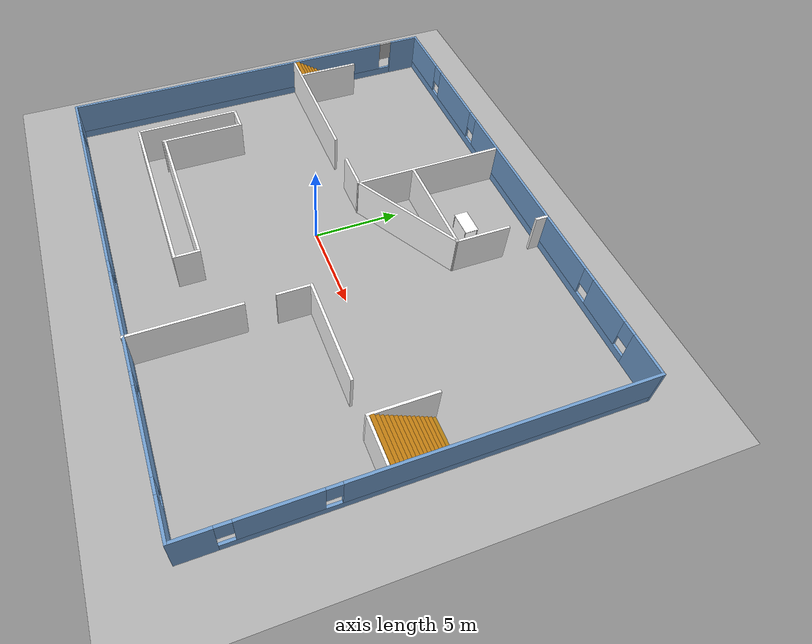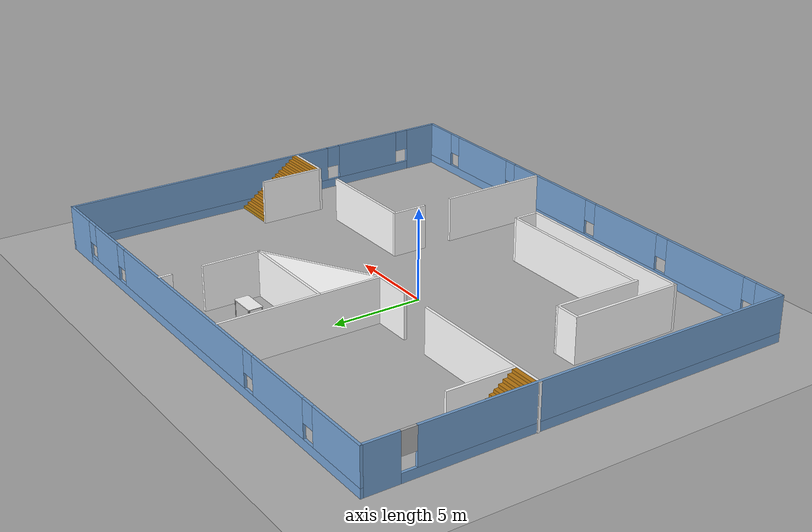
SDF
<sdf version="1.7">
 <world name="default">
  <model name="ground_plane">
   <static>1</static>
   <link name="link">
    <collision name="collision">
     <geometry><plane><normal>0 0 1</normal><size>100 100</size></plane></geometry>
     <surface>
      <contact><collide_bitmask>65535</collide_bitmask></contact>
      <friction><ode><mu>100</mu><mu2>50</mu2></ode></friction>
     </surface>
    </collision>
    <visual name="visual">
     <cast_shadows>0</cast_shadows>
     <geometry><plane><normal>0 0 1</normal><size>100 100</size></plane></geometry>
     <material>
      <ambient>0.7 0.7 0.7 1.0</ambient>
      <diffuse>0.7 0.7 0.7 1.0</diffuse>
      <specular>0.01 0.01 0.01 1.0</specular>
     </material>
    </visual>
   </link>
  </model>
  <model name="officeSpace1">
   <pose>1.12783 0.083294 0 0 -0 0</pose>
   <link name="Stairs_0">
    <visual name="Stairs_0_Visual_0">
     <pose>13.1278 1.44361 0.083333 0 -0 0</pose>
     <geometry><box><size>2.48543 0.236417 0.166667</size></box></geometry>
     <material>
      <ambient>0.7 0.490196 0.0666667 1</ambient>
      <diffuse>0.7 0.490196 0.0666667 1</diffuse>
      <specular>0.01 0.01 0.01 1.0</specular>
     </material>
     <meta><layer>0</layer></meta>
    </visual>
    <collision name="Stairs_0_Collision_0">
     <geometry><box><size>2.48543 0.236417 0.166667</size></box></geometry>
     <pose>13.1278 1.44361 0.083333 0 -0 0</pose>
    </collision>
    <visual name="Stairs_0_Visual_1">
     <pose>13.1278 1.20719 0.25 0 -0 0</pose>
     <geometry><box><size>2.48543 0.236417 0.166667</size></box></geometry>
     <material>
      <ambient>0.756863 0.490196 0.0666667 1</ambient>
      <diffuse>0.756863 0.490196 0.0666667 1</diffuse>
      <specular>0.01 0.01 0.01 1.0</specular>
     </material>
     <meta><layer>0</layer></meta>
    </visual>
    <collision name="Stairs_0_Collision_1">
     <geometry><box><size>2.48543 0.236417 0.166667</size></box></geometry>
     <pose>13.1278 1.20719 0.25 0 -0 0</pose>
    </collision>
    <visual name="Stairs_0_Visual_2">
     <pose>13.1278 0.97077 0.416667 0 -0 0</pose>
     <geometry><box><size>2.48543 0.236417 0.166667</size></box></geometry>
     <material>
      <ambient>0.756863 0.490196 0.0666667 1</ambient>
      <diffuse>0.756863 0.490196 0.0666667 1</diffuse>
      <specular>0.01 0.01 0.01 1.0</specular>
     </material>
     <meta><layer>0</layer></meta>
    </visual>
    <collision name="Stairs_0_Collision_2">
     <geometry><box><size>2.48543 0.236417 0.166667</size></box></geometry>
     <pose>13.1278 0.97077 0.416667 0 -0 0</pose>
    </collision>
    <visual name="Stairs_0_Visual_3">
     <pose>13.1278 0.734353 0.583333 0 -0 0</pose>
     <geometry><box><size>2.48543 0.236417 0.166667</size></box></geometry>
     <material>
      <ambient>0.756863 0.490196 0.0666667 1</ambient>
      <diffuse>0.756863 0.490196 0.0666667 1</diffuse>
      <specular>0.01 0.01 0.01 1.0</specular>
     </material>
     <meta><layer>0</layer></meta>
    </visual>
    <collision name="Stairs_0_Collision_3">
     <geometry><box><size>2.48543 0.236417 0.166667</size></box></geometry>
     <pose>13.1278 0.734353 0.583333 0 -0 0</pose>
    </collision>
    <visual name="Stairs_0_Visual_4">
     <pose>13.1278 0.497935 0.75 0 -0 0</pose>
     <geometry><box><size>2.48543 0.236417 0.166667</size></box></geometry>
     <material>
      <ambient>0.756863 0.490196 0.0666667 1</ambient>
      <diffuse>0.756863 0.490196 0.0666667 1</diffuse>
      <specular>0.01 0.01 0.01 1.0</specular>
     </material>
     <meta><layer>0</layer></meta>
    </visual>
    <collision name="Stairs_0_Collision_4">
     <geometry><box><size>2.48543 0.236417 0.166667</size></box></geometry>
     <pose>13.1278 0.497935 0.75 0 -0 0</pose>
    </collision>
    <visual name="Stairs_0_Visual_5">
     <pose>13.1278 0.261518 0.916667 0 -0 0</pose>
     <geometry><box><size>2.48543 0.236417 0.166667</size></box></geometry>
     <material>
      <ambient>0.756863 0.490196 0.0666667 1</ambient>
      <diffuse>0.756863 0.490196 0.0666667 1</diffuse>
      <specular>0.01 0.01 0.01 1.0</specular>
     </material>
     <meta><layer>0</layer></meta>
    </visual>
    <collision name="Stairs_0_Collision_5">
     <geometry><box><size>2.48543 0.236417 0.166667</size></box></geometry>
     <pose>13.1278 0.261518 0.916667 0 -0 0</pose>
    </collision>
    <visual name="Stairs_0_Visual_6">
     <pose>13.1278 0.0251 1.08333 0 -0 0</pose>
     <geometry><box><size>2.48543 0.236417 0.166667</size></box></geometry>
     <material>
      <ambient>0.756863 0.490196 0.0666667 1</ambient>
      <diffuse>0.756863 0.490196 0.0666667 1</diffuse>
      <specular>0.01 0.01 0.01 1.0</specular>
     </material>
     <meta><layer>0</layer></meta>
    </visual>
    <collision name="Stairs_0_Collision_6">
     <geometry><box><size>2.48543 0.236417 0.166667</size></box></geometry>
     <pose>13.1278 0.0251 1.08333 0 -0 0</pose>
    </collision>
    <visual name="Stairs_0_Visual_7">
     <pose>13.1278 -0.211317 1.25 0 -0 0</pose>
     <geometry><box><size>2.48543 0.236417 0.166667</size></box></geometry>
     <material>
      <ambient>0.756863 0.490196 0.0666667 1</ambient>
      <diffuse>0.756863 0.490196 0.0666667 1</diffuse>
      <specular>0.01 0.01 0.01 1.0</specular>
     </material>
     <meta><layer>0</layer></meta>
    </visual>
    <collision name="Stairs_0_Collision_7">
     <geometry><box><size>2.48543 0.236417 0.166667</size></box></geometry>
     <pose>13.1278 -0.211317 1.25 0 -0 0</pose>
    </collision>
    <visual name="Stairs_0_Visual_8">
     <pose>13.1278 -0.447735 1.41667 0 -0 0</pose>
     <geometry><box><size>2.48543 0.236417 0.166667</size></box></geometry>
     <material>
      <ambient>0.756863 0.490196 0.0666667 1</ambient>
      <diffuse>0.756863 0.490196 0.0666667 1</diffuse>
      <specular>0.01 0.01 0.01 1.0</specular>
     </material>
     <meta><layer>0</layer></meta>
    </visual>
    <collision name="Stairs_0_Collision_8">
     <geometry><box><size>2.48543 0.236417 0.166667</size></box></geometry>
     <pose>13.1278 -0.447735 1.41667 0 -0 0</pose>
    </collision>
    <visual name="Stairs_0_Visual_9">
     <pose>13.1278 -0.684152 1.58333 0 -0 0</pose>
     <geometry><box><size>2.48543 0.236417 0.166667</size></box></geometry>
     <material>
      <ambient>0.756863 0.490196 0.0666667 1</ambient>
      <diffuse>0.756863 0.490196 0.0666667 1</diffuse>
      <specular>0.01 0.01 0.01 1.0</specular>
     </material>
     <meta><layer>0</layer></meta>
    </visual>
    <collision name="Stairs_0_Collision_9">
     <geometry><box><size>2.48543 0.236417 0.166667</size></box></geometry>
     <pose>13.1278 -0.684152 1.58333 0 -0 0</pose>
    </collision>
    <visual name="Stairs_0_Visual_10">
     <pose>13.1278 -0.920569 1.75 0 -0 0</pose>
     <geometry><box><size>2.48543 0.236417 0.166667</size></box></geometry>
     <material>
      <ambient>0.756863 0.490196 0.0666667 1</ambient>
      <diffuse>0.756863 0.490196 0.0666667 1</diffuse>
      <specular>0.01 0.01 0.01 1.0</specular>
     </material>
     <meta><layer>0</layer></meta>
    </visual>
    <collision name="Stairs_0_Collision_10">
     <geometry><box><size>2.48543 0.236417 0.166667</size></box></geometry>
     <pose>13.1278 -0.920569 1.75 0 -0 0</pose>
    </collision>
    <visual name="Stairs_0_Visual_11">
     <pose>13.1278 -1.15699 1.91667 0 -0 0</pose>
     <geometry><box><size>2.48543 0.236417 0.166667</size></box></geometry>
     <material>
      <ambient>0.756863 0.490196 0.0666667 1</ambient>
      <diffuse>0.756863 0.490196 0.0666667 1</diffuse>
      <specular>0.01 0.01 0.01 1.0</specular>
     </material>
     <meta><layer>0</layer></meta>
    </visual>
    <collision name="Stairs_0_Collision_11">
     <geometry><box><size>2.48543 0.236417 0.166667</size></box></geometry>
     <pose>13.1278 -1.15699 1.91667 0 -0 0</pose>
    </collision>
    <visual name="Stairs_0_Visual_12">
     <pose>13.1278 -1.3934 2.08333 0 -0 0</pose>
     <geometry><box><size>2.48543 0.236417 0.166667</size></box></geometry>
     <material>
      <ambient>0.756863 0.490196 0.0666667 1</ambient>
      <diffuse>0.756863 0.490196 0.0666667 1</diffuse>
      <specular>0.01 0.01 0.01 1.0</specular>
     </material>
     <meta><layer>0</layer></meta>
    </visual>
    <collision name="Stairs_0_Collision_12">
     <geometry><box><size>2.48543 0.236417 0.166667</size></box></geometry>
     <pose>13.1278 -1.3934 2.08333 0 -0 0</pose>
    </collision>
    <visual name="Stairs_0_Visual_13">
     <pose>13.1278 -1.62982 2.25 0 -0 0</pose>
     <geometry><box><size>2.48543 0.236417 0.166667</size></box></geometry>
     <material>
      <ambient>0.756863 0.490196 0.0666667 1</ambient>
      <diffuse>0.756863 0.490196 0.0666667 1</diffuse>
      <specular>0.01 0.01 0.01 1.0</specular>
     </material>
     <meta><layer>0</layer></meta>
    </visual>
    <collision name="Stairs_0_Collision_13">
     <geometry><box><size>2.48543 0.236417 0.166667</size></box></geometry>
     <pose>13.1278 -1.62982 2.25 0 -0 0</pose>
    </collision>
    <visual name="Stairs_0_Visual_14">
     <pose>13.1278 -1.86624 2.41667 0 -0 0</pose>
     <geometry><box><size>2.48543 0.236417 0.166667</size></box></geometry>
     <material>
      <ambient>0.756863 0.490196 0.0666667 1</ambient>
      <diffuse>0.756863 0.490196 0.0666667 1</diffuse>
      <specular>0.01 0.01 0.01 1.0</specular>
     </material>
     <meta><layer>0</layer></meta>
    </visual>
    <collision name="Stairs_0_Collision_14">
     <geometry><box><size>2.48543 0.236417 0.166667</size></box></geometry>
     <pose>13.1278 -1.86624 2.41667 0 -0 0</pose>
    </collision>
   </link>
   <link name="Stairs_1">
    <visual name="Stairs_1_Visual_0">
     <pose>-13.6441 6.47079 0.083333 0 -0 0</pose>
     <geometry><box><size>1.37009 0.242586 0.166667</size></box></geometry>
     <material>
      <ambient>0.756863 0.490196 0.0666667 1</ambient>
      <diffuse>0.756863 0.490196 0.0666667 1</diffuse>
      <specular>0.01 0.01 0.01 1.0</specular>
     </material>
     <meta><layer>0</layer></meta>
    </visual>
    <collision name="Stairs_1_Collision_0">
     <geometry><box><size>1.37009 0.242586 0.166667</size></box></geometry>
     <pose>-13.6441 6.47079 0.083333 0 -0 0</pose>
    </collision>
    <visual name="Stairs_1_Visual_1">
     <pose>-13.6441 6.2282 0.25 0 -0 0</pose>
     <geometry><box><size>1.37009 0.242586 0.166667</size></box></geometry>
     <material>
      <ambient>0.756863 0.490196 0.0666667 1</ambient>
      <diffuse>0.756863 0.490196 0.0666667 1</diffuse>
      <specular>0.01 0.01 0.01 1.0</specular>
     </material>
     <meta><layer>0</layer></meta>
    </visual>
    <collision name="Stairs_1_Collision_1">
     <geometry><box><size>1.37009 0.242586 0.166667</size></box></geometry>
     <pose>-13.6441 6.2282 0.25 0 -0 0</pose>
    </collision>
    <visual name="Stairs_1_Visual_2">
     <pose>-13.6441 5.98562 0.416667 0 -0 0</pose>
     <geometry><box><size>1.37009 0.242586 0.166667</size></box></geometry>
     <material>
      <ambient>0.756863 0.490196 0.0666667 1</ambient>
      <diffuse>0.756863 0.490196 0.0666667 1</diffuse>
      <specular>0.01 0.01 0.01 1.0</specular>
     </material>
     <meta><layer>0</layer></meta>
    </visual>
    <collision name="Stairs_1_Collision_2">
     <geometry><box><size>1.37009 0.242586 0.166667</size></box></geometry>
     <pose>-13.6441 5.98562 0.416667 0 -0 0</pose>
    </collision>
    <visual name="Stairs_1_Visual_3">
     <pose>-13.6441 5.74303 0.583333 0 -0 0</pose>
     <geometry><box><size>1.37009 0.242586 0.166667</size></box></geometry>
     <material>
      <ambient>0.756863 0.490196 0.0666667 1</ambient>
      <diffuse>0.756863 0.490196 0.0666667 1</diffuse>
      <specular>0.01 0.01 0.01 1.0</specular>
     </material>
     <meta><layer>0</layer></meta>
    </visual>
    <collision name="Stairs_1_Collision_3">
     <geometry><box><size>1.37009 0.242586 0.166667</size></box></geometry>
     <pose>-13.6441 5.74303 0.583333 0 -0 0</pose>
    </collision>
    <visual name="Stairs_1_Visual_4">
     <pose>-13.6441 5.50045 0.75 0 -0 0</pose>
     <geometry><box><size>1.37009 0.242586 0.166667</size></box></geometry>
     <material>
      <ambient>0.756863 0.490196 0.0666667 1</ambient>
      <diffuse>0.756863 0.490196 0.0666667 1</diffuse>
      <specular>0.01 0.01 0.01 1.0</specular>
     </material>
     <meta><layer>0</layer></meta>
    </visual>
    <collision name="Stairs_1_Collision_4">
     <geometry><box><size>1.37009 0.242586 0.166667</size></box></geometry>
     <pose>-13.6441 5.50045 0.75 0 -0 0</pose>
    </collision>
    <visual name="Stairs_1_Visual_5">
     <pose>-13.6441 5.25786 0.916667 0 -0 0</pose>
     <geometry><box><size>1.37009 0.242586 0.166667</size></box></geometry>
     <material>
      <ambient>0.756863 0.490196 0.0666667 1</ambient>
      <diffuse>0.756863 0.490196 0.0666667 1</diffuse>
      <specular>0.01 0.01 0.01 1.0</specular>
     </material>
     <meta><layer>0</layer></meta>
    </visual>
    <collision name="Stairs_1_Collision_5">
     <geometry><box><size>1.37009 0.242586 0.166667</size></box></geometry>
     <pose>-13.6441 5.25786 0.916667 0 -0 0</pose>
    </collision>
    <visual name="Stairs_1_Visual_6">
     <pose>-13.6441 5.01528 1.08333 0 -0 0</pose>
     <geometry><box><size>1.37009 0.242586 0.166667</size></box></geometry>
     <material>
      <ambient>0.756863 0.490196 0.0666667 1</ambient>
      <diffuse>0.756863 0.490196 0.0666667 1</diffuse>
      <specular>0.01 0.01 0.01 1.0</specular>
     </material>
     <meta><layer>0</layer></meta>
    </visual>
    <collision name="Stairs_1_Collision_6">
     <geometry><box><size>1.37009 0.242586 0.166667</size></box></geometry>
     <pose>-13.6441 5.01528 1.08333 0 -0 0</pose>
    </collision>
    <visual name="Stairs_1_Visual_7">
     <pose>-13.6441 4.77269 1.25 0 -0 0</pose>
     <geometry><box><size>1.37009 0.242586 0.166667</size></box></geometry>
     <material>
      <ambient>0.756863 0.490196 0.0666667 1</ambient>
      <diffuse>0.756863 0.490196 0.0666667 1</diffuse>
      <specular>0.01 0.01 0.01 1.0</specular>
     </material>
     <meta><layer>0</layer></meta>
    </visual>
    <collision name="Stairs_1_Collision_7">
     <geometry><box><size>1.37009 0.242586 0.166667</size></box></geometry>
     <pose>-13.6441 4.77269 1.25 0 -0 0</pose>
    </collision>
    <visual name="Stairs_1_Visual_8">
     <pose>-13.6441 4.53011 1.41667 0 -0 0</pose>
     <geometry><box><size>1.37009 0.242586 0.166667</size></box></geometry>
     <material>
      <ambient>0.756863 0.490196 0.0666667 1</ambient>
      <diffuse>0.756863 0.490196 0.0666667 1</diffuse>
      <specular>0.01 0.01 0.01 1.0</specular>
     </material>
     <meta><layer>0</layer></meta>
    </visual>
    <collision name="Stairs_1_Collision_8">
     <geometry><box><size>1.37009 0.242586 0.166667</size></box></geometry>
     <pose>-13.6441 4.53011 1.41667 0 -0 0</pose>
    </collision>
    <visual name="Stairs_1_Visual_9">
     <pose>-13.6441 4.28752 1.58333 0 -0 0</pose>
     <geometry><box><size>1.37009 0.242586 0.166667</size></box></geometry>
     <material>
      <ambient>0.756863 0.490196 0.0666667 1</ambient>
      <diffuse>0.756863 0.490196 0.0666667 1</diffuse>
      <specular>0.01 0.01 0.01 1.0</specular>
     </material>
     <meta><layer>0</layer></meta>
    </visual>
    <collision name="Stairs_1_Collision_9">
     <geometry><box><size>1.37009 0.242586 0.166667</size></box></geometry>
     <pose>-13.6441 4.28752 1.58333 0 -0 0</pose>
    </collision>
    <visual name="Stairs_1_Visual_10">
     <pose>-13.6441 4.04493 1.75 0 -0 0</pose>
     <geometry><box><size>1.37009 0.242586 0.166667</size></box></geometry>
     <material>
      <ambient>0.756863 0.490196 0.0666667 1</ambient>
      <diffuse>0.756863 0.490196 0.0666667 1</diffuse>
      <specular>0.01 0.01 0.01 1.0</specular>
     </material>
     <meta><layer>0</layer></meta>
    </visual>
    <collision name="Stairs_1_Collision_10">
     <geometry><box><size>1.37009 0.242586 0.166667</size></box></geometry>
     <pose>-13.6441 4.04493 1.75 0 -0 0</pose>
    </collision>
    <visual name="Stairs_1_Visual_11">
     <pose>-13.6441 3.80235 1.91667 0 -0 0</pose>
     <geometry><box><size>1.37009 0.242586 0.166667</size></box></geometry>
     <material>
      <ambient>0.756863 0.490196 0.0666667 1</ambient>
      <diffuse>0.756863 0.490196 0.0666667 1</diffuse>
      <specular>0.01 0.01 0.01 1.0</specular>
     </material>
     <meta><layer>0</layer></meta>
    </visual>
    <collision name="Stairs_1_Collision_11">
     <geometry><box><size>1.37009 0.242586 0.166667</size></box></geometry>
     <pose>-13.6441 3.80235 1.91667 0 -0 0</pose>
    </collision>
    <visual name="Stairs_1_Visual_12">
     <pose>-13.6441 3.55976 2.08333 0 -0 0</pose>
     <geometry><box><size>1.37009 0.242586 0.166667</size></box></geometry>
     <material>
      <ambient>0.756863 0.490196 0.0666667 1</ambient>
      <diffuse>0.756863 0.490196 0.0666667 1</diffuse>
      <specular>0.01 0.01 0.01 1.0</specular>
     </material>
     <meta><layer>0</layer></meta>
    </visual>
    <collision name="Stairs_1_Collision_12">
     <geometry><box><size>1.37009 0.242586 0.166667</size></box></geometry>
     <pose>-13.6441 3.55976 2.08333 0 -0 0</pose>
    </collision>
    <visual name="Stairs_1_Visual_13">
     <pose>-13.6441 3.31718 2.25 0 -0 0</pose>
     <geometry><box><size>1.37009 0.242586 0.166667</size></box></geometry>
     <material>
      <ambient>0.756863 0.490196 0.0666667 1</ambient>
      <diffuse>0.756863 0.490196 0.0666667 1</diffuse>
      <specular>0.01 0.01 0.01 1.0</specular>
     </material>
     <meta><layer>0</layer></meta>
    </visual>
    <collision name="Stairs_1_Collision_13">
     <geometry><box><size>1.37009 0.242586 0.166667</size></box></geometry>
     <pose>-13.6441 3.31718 2.25 0 -0 0</pose>
    </collision>
    <visual name="Stairs_1_Visual_14">
     <pose>-13.6441 3.07459 2.41667 0 -0 0</pose>
     <geometry><box><size>1.37009 0.242586 0.166667</size></box></geometry>
     <material>
      <ambient>0.756863 0.490196 0.0666667 1</ambient>
      <diffuse>0.756863 0.490196 0.0666667 1</diffuse>
      <specular>0.01 0.01 0.01 1.0</specular>
     </material>
     <meta><layer>0</layer></meta>
    </visual>
    <collision name="Stairs_1_Collision_14">
     <geometry><box><size>1.37009 0.242586 0.166667</size></box></geometry>
     <pose>-13.6441 3.07459 2.41667 0 -0 0</pose>
    </collision>
   </link>
   <link name="Wall_15">
    <pose>0.019773 -11.7779 0 0 -0 0</pose>
    <visual name="Wall_15_Visual_0">
     <pose>-13.6565 0 1.25 0 -0 0</pose>
     <geometry><box><size>1.68692 0.15 2.5</size></box></geometry>
     <material>
      <ambient>0.447059 0.623529 0.811765 1</ambient>
      <diffuse>0.447059 0.623529 0.811765 1</diffuse>
      <specular>0.01 0.01 0.01 1.0</specular>
     </material>
     <meta><layer>0</layer></meta>
    </visual>
    <collision name="Wall_15_Collision_0">
     <geometry><box><size>1.68692 0.15 2.5</size></box></geometry>
     <pose>-13.6565 0 1.25 0 -0 0</pose>
    </collision>
    <visual name="Wall_15_Visual_1">
     <pose>0.84346 0 0.25 0 -0 0</pose>
     <geometry><box><size>27.3131 0.15 0.5</size></box></geometry>
     <material>
      <ambient>0.447059 0.623529 0.811765 1</ambient>
      <diffuse>0.447059 0.623529 0.811765 1</diffuse>
      <specular>0.01 0.01 0.01 1.0</specular>
     </material>
     <meta><layer>0</layer></meta>
    </visual>
    <collision name="Wall_15_Collision_1">
     <geometry><box><size>27.3131 0.15 0.5</size></box></geometry>
     <pose>0.84346 0 0.25 0 -0 0</pose>
    </collision>
    <visual name="Wall_15_Visual_2">
     <pose>-9.34337 0 1.5 0 -0 0</pose>
     <geometry><box><size>5.33941 0.15 2</size></box></geometry>
     <material>
      <ambient>0.447059 0.623529 0.811765 1</ambient>
      <diffuse>0.447059 0.623529 0.811765 1</diffuse>
      <specular>0.01 0.01 0.01 1.0</specular>
     </material>
     <meta><layer>0</layer></meta>
    </visual>
    <collision name="Wall_15_Collision_2">
     <geometry><box><size>5.33941 0.15 2</size></box></geometry>
     <pose>-9.34337 0 1.5 0 -0 0</pose>
    </collision>
    <visual name="Wall_15_Visual_3">
     <pose>-3.46479 0 1.5 0 -0 0</pose>
     <geometry><box><size>4.81776 0.15 2</size></box></geometry>
     <material>
      <ambient>0.447059 0.623529 0.811765 1</ambient>
      <diffuse>0.447059 0.623529 0.811765 1</diffuse>
      <specular>0.01 0.01 0.01 1.0</specular>
     </material>
     <meta><layer>0</layer></meta>
    </visual>
    <collision name="Wall_15_Collision_3">
     <geometry><box><size>4.81776 0.15 2</size></box></geometry>
     <pose>-3.46479 0 1.5 0 -0 0</pose>
    </collision>
    <visual name="Wall_15_Visual_4">
     <pose>2.89532 0 1.5 0 -0 0</pose>
     <geometry><box><size>6.30246 0.15 2</size></box></geometry>
     <material>
      <ambient>0.447059 0.623529 0.811765 1</ambient>
      <diffuse>0.447059 0.623529 0.811765 1</diffuse>
      <specular>0.01 0.01 0.01 1.0</specular>
     </material>
     <meta><layer>0</layer></meta>
    </visual>
    <collision name="Wall_15_Collision_4">
     <geometry><box><size>6.30246 0.15 2</size></box></geometry>
     <pose>2.89532 0 1.5 0 -0 0</pose>
    </collision>
    <visual name="Wall_15_Visual_5">
     <pose>9.17518 0 1.5 0 -0 0</pose>
     <geometry><box><size>4.65726 0.15 2</size></box></geometry>
     <material>
      <ambient>0.447059 0.623529 0.811765 1</ambient>
      <diffuse>0.447059 0.623529 0.811765 1</diffuse>
      <specular>0.01 0.01 0.01 1.0</specular>
     </material>
     <meta><layer>0</layer></meta>
    </visual>
    <collision name="Wall_15_Collision_5">
     <geometry><box><size>4.65726 0.15 2</size></box></geometry>
     <pose>9.17518 0 1.5 0 -0 0</pose>
    </collision>
    <visual name="Wall_15_Visual_6">
     <pose>13.4019 0 1.5 0 -0 0</pose>
     <geometry><box><size>2.19619 0.15 2</size></box></geometry>
     <material>
      <ambient>0.447059 0.623529 0.811765 1</ambient>
      <diffuse>0.447059 0.623529 0.811765 1</diffuse>
      <specular>0.01 0.01 0.01 1.0</specular>
     </material>
     <meta><layer>0</layer></meta>
    </visual>
    <collision name="Wall_15_Collision_6">
     <geometry><box><size>2.19619 0.15 2</size></box></geometry>
     <pose>13.4019 0 1.5 0 -0 0</pose>
    </collision>
    <visual name="Wall_15_Visual_7">
     <pose>-12.4131 0 1.9 0 -0 0</pose>
     <geometry><box><size>0.8 0.15 1.2</size></box></geometry>
     <material>
      <ambient>0.447059 0.623529 0.811765 1</ambient>
      <diffuse>0.447059 0.623529 0.811765 1</diffuse>
      <specular>0.01 0.01 0.01 1.0</specular>
     </material>
     <meta><layer>0</layer></meta>
    </visual>
    <collision name="Wall_15_Collision_7">
     <geometry><box><size>0.8 0.15 1.2</size></box></geometry>
     <pose>-12.4131 0 1.9 0 -0 0</pose>
    </collision>
    <visual name="Wall_15_Visual_8">
     <pose>-6.27367 0 1.9 0 -0 0</pose>
     <geometry><box><size>0.8 0.15 1.2</size></box></geometry>
     <material>
      <ambient>0.447059 0.623529 0.811765 1</ambient>
      <diffuse>0.447059 0.623529 0.811765 1</diffuse>
      <specular>0.01 0.01 0.01 1.0</specular>
     </material>
     <meta><layer>0</layer></meta>
    </visual>
    <collision name="Wall_15_Collision_8">
     <geometry><box><size>0.8 0.15 1.2</size></box></geometry>
     <pose>-6.27367 0 1.9 0 -0 0</pose>
    </collision>
    <visual name="Wall_15_Visual_9">
     <pose>-0.655904 0 1.9 0 -0 0</pose>
     <geometry><box><size>0.8 0.15 1.2</size></box></geometry>
     <material>
      <ambient>0.447059 0.623529 0.811765 1</ambient>
      <diffuse>0.447059 0.623529 0.811765 1</diffuse>
      <specular>0.01 0.01 0.01 1.0</specular>
     </material>
     <meta><layer>0</layer></meta>
    </visual>
    <collision name="Wall_15_Collision_9">
     <geometry><box><size>0.8 0.15 1.2</size></box></geometry>
     <pose>-0.655904 0 1.9 0 -0 0</pose>
    </collision>
    <visual name="Wall_15_Visual_10">
     <pose>6.44655 0 1.9 0 -0 0</pose>
     <geometry><box><size>0.8 0.15 1.2</size></box></geometry>
     <material>
      <ambient>0.447059 0.623529 0.811765 1</ambient>
      <diffuse>0.447059 0.623529 0.811765 1</diffuse>
      <specular>0.01 0.01 0.01 1.0</specular>
     </material>
     <meta><layer>0</layer></meta>
    </visual>
    <collision name="Wall_15_Collision_10">
     <geometry><box><size>0.8 0.15 1.2</size></box></geometry>
     <pose>6.44655 0 1.9 0 -0 0</pose>
    </collision>
    <visual name="Wall_15_Visual_11">
     <pose>11.9038 0 1.9 0 -0 0</pose>
     <geometry><box><size>0.8 0.15 1.2</size></box></geometry>
     <material>
      <ambient>0.447059 0.623529 0.811765 1</ambient>
      <diffuse>0.447059 0.623529 0.811765 1</diffuse>
      <specular>0.01 0.01 0.01 1.0</specular>
     </material>
     <meta><layer>0</layer></meta>
    </visual>
    <collision name="Wall_15_Collision_11">
     <geometry><box><size>0.8 0.15 1.2</size></box></geometry>
     <pose>11.9038 0 1.9 0 -0 0</pose>
    </collision>
   </link>
   <link name="Wall_16">
    <pose>14.4448 0.022067 0 0 -0 1.5708</pose>
    <visual name="Wall_16_Visual_0">
     <pose>-10.8556 0 1.25 0 -0 0</pose>
     <geometry><box><size>2.03884 0.15 2.5</size></box></geometry>
     <material>
      <ambient>0.447059 0.623529 0.811765 1</ambient>
      <diffuse>0.447059 0.623529 0.811765 1</diffuse>
      <specular>0.01 0.01 0.01 1.0</specular>
     </material>
     <meta><layer>0</layer></meta>
    </visual>
    <collision name="Wall_16_Collision_0">
     <geometry><box><size>2.03884 0.15 2.5</size></box></geometry>
     <pose>-10.8556 0 1.25 0 -0 0</pose>
    </collision>
    <visual name="Wall_16_Visual_1">
     <pose>1.01942 0 0.25 0 -0 0</pose>
     <geometry><box><size>21.7112 0.15 0.5</size></box></geometry>
     <material>
      <ambient>0.447059 0.623529 0.811765 1</ambient>
      <diffuse>0.447059 0.623529 0.811765 1</diffuse>
      <specular>0.01 0.01 0.01 1.0</specular>
     </material>
     <meta><layer>0</layer></meta>
    </visual>
    <collision name="Wall_16_Collision_1">
     <geometry><box><size>21.7112 0.15 0.5</size></box></geometry>
     <pose>1.01942 0 0.25 0 -0 0</pose>
    </collision>
    <visual name="Wall_16_Visual_2">
     <pose>-7.00849 0 1.5 0 -0 0</pose>
     <geometry><box><size>4.05535 0.15 2</size></box></geometry>
     <material>
      <ambient>0.447059 0.623529 0.811765 1</ambient>
      <diffuse>0.447059 0.623529 0.811765 1</diffuse>
      <specular>0.01 0.01 0.01 1.0</specular>
     </material>
     <meta><layer>0</layer></meta>
    </visual>
    <collision name="Wall_16_Collision_2">
     <geometry><box><size>4.05535 0.15 2</size></box></geometry>
     <pose>-7.00849 0 1.5 0 -0 0</pose>
    </collision>
    <visual name="Wall_16_Visual_3">
     <pose>3.84709 0 1.5 0 -0 0</pose>
     <geometry><box><size>16.0558 0.15 2</size></box></geometry>
     <material>
      <ambient>0.447059 0.623529 0.811765 1</ambient>
      <diffuse>0.447059 0.623529 0.811765 1</diffuse>
      <specular>0.01 0.01 0.01 1.0</specular>
     </material>
     <meta><layer>0</layer></meta>
    </visual>
    <collision name="Wall_16_Collision_3">
     <geometry><box><size>16.0558 0.15 2</size></box></geometry>
     <pose>3.84709 0 1.5 0 -0 0</pose>
    </collision>
    <visual name="Wall_16_Visual_4">
     <pose>-9.43617 0 1.9 0 -0 0</pose>
     <geometry><box><size>0.8 0.15 1.2</size></box></geometry>
     <material>
      <ambient>0.447059 0.623529 0.811765 1</ambient>
      <diffuse>0.447059 0.623529 0.811765 1</diffuse>
      <specular>0.01 0.01 0.01 1.0</specular>
     </material>
     <meta><layer>0</layer></meta>
    </visual>
    <collision name="Wall_16_Collision_4">
     <geometry><box><size>0.8 0.15 1.2</size></box></geometry>
     <pose>-9.43617 0 1.9 0 -0 0</pose>
    </collision>
    <visual name="Wall_16_Visual_5">
     <pose>-4.58081 0 1.9 0 -0 0</pose>
     <geometry><box><size>0.8 0.15 1.2</size></box></geometry>
     <material>
      <ambient>0.447059 0.623529 0.811765 1</ambient>
      <diffuse>0.447059 0.623529 0.811765 1</diffuse>
      <specular>0.01 0.01 0.01 1.0</specular>
     </material>
     <meta><layer>0</layer></meta>
    </visual>
    <collision name="Wall_16_Collision_5">
     <geometry><box><size>0.8 0.15 1.2</size></box></geometry>
     <pose>-4.58081 0 1.9 0 -0 0</pose>
    </collision>
   </link>
   <link name="Wall_17">
    <pose>0.019773 11.8221 0 0 -0 3.14159</pose>
    <visual name="Wall_17_Visual_0">
     <pose>-13.3016 0 1.25 0 -0 0</pose>
     <geometry><box><size>2.39683 0.15 2.5</size></box></geometry>
     <material>
      <ambient>0.447059 0.623529 0.811765 1</ambient>
      <diffuse>0.447059 0.623529 0.811765 1</diffuse>
      <specular>0.01 0.01 0.01 1.0</specular>
     </material>
     <meta><layer>0</layer></meta>
    </visual>
    <collision name="Wall_17_Collision_0">
     <geometry><box><size>2.39683 0.15 2.5</size></box></geometry>
     <pose>-13.3016 0 1.25 0 -0 0</pose>
    </collision>
    <visual name="Wall_17_Visual_1">
     <pose>1.19841 0 0.25 0 -0 0</pose>
     <geometry><box><size>26.6032 0.15 0.5</size></box></geometry>
     <material>
      <ambient>0.447059 0.623529 0.811765 1</ambient>
      <diffuse>0.447059 0.623529 0.811765 1</diffuse>
      <specular>0.01 0.01 0.01 1.0</specular>
     </material>
     <meta><layer>0</layer></meta>
    </visual>
    <collision name="Wall_17_Collision_1">
     <geometry><box><size>26.6032 0.15 0.5</size></box></geometry>
     <pose>1.19841 0 0.25 0 -0 0</pose>
    </collision>
    <visual name="Wall_17_Visual_2">
     <pose>-9.91753 0 1.5 0 -0 0</pose>
     <geometry><box><size>2.77129 0.15 2</size></box></geometry>
     <material>
      <ambient>0.447059 0.623529 0.811765 1</ambient>
      <diffuse>0.447059 0.623529 0.811765 1</diffuse>
      <specular>0.01 0.01 0.01 1.0</specular>
     </material>
     <meta><layer>0</layer></meta>
    </visual>
    <collision name="Wall_17_Collision_2">
     <geometry><box><size>2.77129 0.15 2</size></box></geometry>
     <pose>-9.91753 0 1.5 0 -0 0</pose>
    </collision>
    <visual name="Wall_17_Visual_3">
     <pose>-1.42429 0 1.5 0 -0 0</pose>
     <geometry><box><size>12.6152 0.15 2</size></box></geometry>
     <material>
      <ambient>0.447059 0.623529 0.811765 1</ambient>
      <diffuse>0.447059 0.623529 0.811765 1</diffuse>
      <specular>0.01 0.01 0.01 1.0</specular>
     </material>
     <meta><layer>0</layer></meta>
    </visual>
    <collision name="Wall_17_Collision_3">
     <geometry><box><size>12.6152 0.15 2</size></box></geometry>
     <pose>-1.42429 0 1.5 0 -0 0</pose>
    </collision>
    <visual name="Wall_17_Visual_4">
     <pose>7.86509 0 1.5 0 -0 0</pose>
     <geometry><box><size>4.36355 0.15 2</size></box></geometry>
     <material>
      <ambient>0.447059 0.623529 0.811765 1</ambient>
      <diffuse>0.447059 0.623529 0.811765 1</diffuse>
      <specular>0.01 0.01 0.01 1.0</specular>
     </material>
     <meta><layer>0</layer></meta>
    </visual>
    <collision name="Wall_17_Collision_4">
     <geometry><box><size>4.36355 0.15 2</size></box></geometry>
     <pose>7.86509 0 1.5 0 -0 0</pose>
    </collision>
    <visual name="Wall_17_Visual_5">
     <pose>12.6734 0 1.5 0 -0 0</pose>
     <geometry><box><size>3.65314 0.15 2</size></box></geometry>
     <material>
      <ambient>0.447059 0.623529 0.811765 1</ambient>
      <diffuse>0.447059 0.623529 0.811765 1</diffuse>
      <specular>0.01 0.01 0.01 1.0</specular>
     </material>
     <meta><layer>0</layer></meta>
    </visual>
    <collision name="Wall_17_Collision_5">
     <geometry><box><size>3.65314 0.15 2</size></box></geometry>
     <pose>12.6734 0 1.5 0 -0 0</pose>
    </collision>
    <visual name="Wall_17_Visual_6">
     <pose>-11.7032 0 1.9 0 -0 0</pose>
     <geometry><box><size>0.8 0.15 1.2</size></box></geometry>
     <material>
      <ambient>0.447059 0.623529 0.811765 1</ambient>
      <diffuse>0.447059 0.623529 0.811765 1</diffuse>
      <specular>0.01 0.01 0.01 1.0</specular>
     </material>
     <meta><layer>0</layer></meta>
    </visual>
    <collision name="Wall_17_Collision_6">
     <geometry><box><size>0.8 0.15 1.2</size></box></geometry>
     <pose>-11.7032 0 1.9 0 -0 0</pose>
    </collision>
    <visual name="Wall_17_Visual_7">
     <pose>-8.13188 0 1.9 0 -0 0</pose>
     <geometry><box><size>0.8 0.15 1.2</size></box></geometry>
     <material>
      <ambient>0.447059 0.623529 0.811765 1</ambient>
      <diffuse>0.447059 0.623529 0.811765 1</diffuse>
      <specular>0.01 0.01 0.01 1.0</specular>
     </material>
     <meta><layer>0</layer></meta>
    </visual>
    <collision name="Wall_17_Collision_7">
     <geometry><box><size>0.8 0.15 1.2</size></box></geometry>
     <pose>-8.13188 0 1.9 0 -0 0</pose>
    </collision>
    <visual name="Wall_17_Visual_8">
     <pose>5.28331 0 1.9 0 -0 0</pose>
     <geometry><box><size>0.8 0.15 1.2</size></box></geometry>
     <material>
      <ambient>0.447059 0.623529 0.811765 1</ambient>
      <diffuse>0.447059 0.623529 0.811765 1</diffuse>
      <specular>0.01 0.01 0.01 1.0</specular>
     </material>
     <meta><layer>0</layer></meta>
    </visual>
    <collision name="Wall_17_Collision_8">
     <geometry><box><size>0.8 0.15 1.2</size></box></geometry>
     <pose>5.28331 0 1.9 0 -0 0</pose>
    </collision>
    <visual name="Wall_17_Visual_9">
     <pose>10.4469 0 1.9 0 -0 0</pose>
     <geometry><box><size>0.8 0.15 1.2</size></box></geometry>
     <material>
      <ambient>0.447059 0.623529 0.811765 1</ambient>
      <diffuse>0.447059 0.623529 0.811765 1</diffuse>
      <specular>0.01 0.01 0.01 1.0</specular>
     </material>
     <meta><layer>0</layer></meta>
    </visual>
    <collision name="Wall_17_Collision_9">
     <geometry><box><size>0.8 0.15 1.2</size></box></geometry>
     <pose>10.4469 0 1.9 0 -0 0</pose>
    </collision>
   </link>
   <link name="Wall_18">
    <pose>-14.4052 0.022067 0 0 -0 -1.5708</pose>
    <visual name="Wall_18_Visual_0">
     <pose>-10.8894 0 1.25 0 -0 0</pose>
     <geometry><box><size>1.97128 0.15 2.5</size></box></geometry>
     <material>
      <ambient>0.447059 0.623529 0.811765 1</ambient>
      <diffuse>0.447059 0.623529 0.811765 1</diffuse>
      <specular>0.01 0.01 0.01 1.0</specular>
     </material>
     <meta><layer>0</layer></meta>
    </visual>
    <collision name="Wall_18_Collision_0">
     <geometry><box><size>1.97128 0.15 2.5</size></box></geometry>
     <pose>-10.8894 0 1.25 0 -0 0</pose>
    </collision>
    <visual name="Wall_18_Visual_1">
     <pose>0.98564 0 0.25 0 -0 0</pose>
     <geometry><box><size>21.7787 0.15 0.5</size></box></geometry>
     <material>
      <ambient>0.447059 0.623529 0.811765 1</ambient>
      <diffuse>0.447059 0.623529 0.811765 1</diffuse>
      <specular>0.01 0.01 0.01 1.0</specular>
     </material>
     <meta><layer>0</layer></meta>
    </visual>
    <collision name="Wall_18_Collision_1">
     <geometry><box><size>21.7787 0.15 0.5</size></box></geometry>
     <pose>0.98564 0 0.25 0 -0 0</pose>
    </collision>
    <visual name="Wall_18_Visual_2">
     <pose>1.38564 0 1.5 0 -0 0</pose>
     <geometry><box><size>20.9787 0.15 2</size></box></geometry>
     <material>
      <ambient>0.447059 0.623529 0.811765 1</ambient>
      <diffuse>0.447059 0.623529 0.811765 1</diffuse>
      <specular>0.01 0.01 0.01 1.0</specular>
     </material>
     <meta><layer>0</layer></meta>
    </visual>
    <collision name="Wall_18_Collision_2">
     <geometry><box><size>20.9787 0.15 2</size></box></geometry>
     <pose>1.38564 0 1.5 0 -0 0</pose>
    </collision>
    <visual name="Wall_18_Visual_3">
     <pose>-9.50372 0 1.9 0 -0 0</pose>
     <geometry><box><size>0.8 0.15 1.2</size></box></geometry>
     <material>
      <ambient>0.7 0.7 0.7 1.0</ambient>
      <diffuse>0.7 0.7 0.7 1.0</diffuse>
      <specular>0.01 0.01 0.01 1.0</specular>
      <ambient>0.447059 0.623529 0.811765 1</ambient>
     </material>
     <meta><layer>0</layer></meta>
    </visual>
    <collision name="Wall_18_Collision_3">
     <geometry><box><size>0.8 0.15 1.2</size></box></geometry>
     <pose>-9.50372 0 1.9 0 -0 0</pose>
    </collision>
   </link>
   <link name="Wall_21">
    <collision name="Wall_21_Collision">
     <geometry><box><size>8.5 0.15 2.5</size></box></geometry>
     <pose>0 0 1.25 0 -0 0</pose>
    </collision>
    <visual name="Wall_21_Visual">
     <pose>0 0 1.25 0 -0 0</pose>
     <geometry><box><size>8.5 0.15 2.5</size></box></geometry>
     <material>
      <pbr><metal><albedo_map>model://wall/materials/textures/wood.jpg</albedo_map></metal></pbr>
      <ambient>1 1 1 1</ambient>
      <diffuse>1 1 1 1</diffuse>
      <specular>1 1 1 1</specular>
     </material>
     <meta><layer>0</layer></meta>
    </visual>
    <pose>-10.2698 2.8656 0 0 -0 0</pose>
   </link>
   <link name="Wall_23">
    <collision name="Wall_23_Collision">
     <geometry><box><size>2.25 0.15 2.5</size></box></geometry>
     <pose>0 0 1.25 0 -0 0</pose>
    </collision>
    <visual name="Wall_23_Visual">
     <pose>0 0 1.25 0 -0 0</pose>
     <geometry><box><size>2.25 0.15 2.5</size></box></geometry>
     <material>
      <pbr><metal><albedo_map>model://wall/materials/textures/wood.jpg</albedo_map></metal></pbr>
      <ambient>1 1 1 1</ambient>
      <diffuse>1 1 1 1</diffuse>
      <specular>1 1 1 1</specular>
     </material>
     <meta><layer>0</layer></meta>
    </visual>
    <pose>-3.15775 2.8656 0 0 -0 0</pose>
   </link>
   <link name="Wall_24">
    <collision name="Wall_24_Collision">
     <geometry><box><size>9 0.15 2.5</size></box></geometry>
     <pose>0 0 1.25 0 -0 0</pose>
    </collision>
    <visual name="Wall_24_Visual">
     <pose>0 0 1.25 0 -0 0</pose>
     <geometry><box><size>9 0.15 2.5</size></box></geometry>
     <material>
      <pbr><metal><albedo_map>model://wall/materials/textures/wood.jpg</albedo_map></metal></pbr>
      <ambient>1 1 1 1</ambient>
      <diffuse>1 1 1 1</diffuse>
      <specular>1 1 1 1</specular>
     </material>
     <meta><layer>0</layer></meta>
    </visual>
    <pose>-2.10776 7.2906 0 0 -0 1.5708</pose>
   </link>
   <link name="Wall_26">
    <collision name="Wall_26_Collision">
     <geometry><box><size>6.25 0.15 2.5</size></box></geometry>
     <pose>0 0 1.25 0 -0 0</pose>
    </collision>
    <visual name="Wall_26_Visual">
     <pose>0 0 1.25 0 -0 0</pose>
     <geometry><box><size>6.25 0.15 2.5</size></box></geometry>
     <material>
      <pbr><metal><albedo_map>model://wall/materials/textures/wood.jpg</albedo_map></metal></pbr>
      <ambient>1 1 1 1</ambient>
      <diffuse>1 1 1 1</diffuse>
      <specular>1 1 1 1</specular>
     </material>
     <meta><layer>0</layer></meta>
    </visual>
    <pose>4.02829 -8.77207 0 0 -0 1.5708</pose>
   </link>
   <link name="Wall_28">
    <collision name="Wall_28_Collision">
     <geometry><box><size>2 0.15 2.5</size></box></geometry>
     <pose>0 0 1.25 0 -0 0</pose>
    </collision>
    <visual name="Wall_28_Visual">
     <pose>0 0 1.25 0 -0 0</pose>
     <geometry><box><size>2 0.15 2.5</size></box></geometry>
     <material>
      <pbr><metal><albedo_map>model://wall/materials/textures/wood.jpg</albedo_map></metal></pbr>
      <ambient>1 1 1 1</ambient>
      <diffuse>1 1 1 1</diffuse>
      <specular>1 1 1 1</specular>
     </material>
     <meta><layer>0</layer></meta>
    </visual>
    <pose>4.02829 -3.00823 0 0 -0 1.5708</pose>
   </link>
   <link name="Wall_29">
    <collision name="Wall_29_Collision">
     <geometry><box><size>6 0.15 2.5</size></box></geometry>
     <pose>0 0 1.25 0 -0 0</pose>
    </collision>
    <visual name="Wall_29_Visual">
     <pose>0 0 1.25 0 -0 0</pose>
     <geometry><box><size>6 0.15 2.5</size></box></geometry>
     <material>
      <pbr><metal><albedo_map>model://wall/materials/textures/wood.jpg</albedo_map></metal></pbr>
      <ambient>1 1 1 1</ambient>
      <diffuse>1 1 1 1</diffuse>
      <specular>1 1 1 1</specular>
     </material>
     <meta><layer>0</layer></meta>
    </visual>
    <pose>6.95329 -2.08323 0 0 -0 0</pose>
   </link>
   <link name="Wall_31">
    <collision name="Wall_31_Collision">
     <geometry><box><size>2.75 0.15 2.5</size></box></geometry>
     <pose>0 0 1.25 0 -0 0</pose>
    </collision>
    <visual name="Wall_31_Visual">
     <pose>0 0 1.25 0 -0 0</pose>
     <geometry><box><size>2.75 0.15 2.5</size></box></geometry>
     <material>
      <pbr><metal><albedo_map>model://wall/materials/textures/wood.jpg</albedo_map></metal></pbr>
      <ambient>1 1 1 1</ambient>
      <diffuse>1 1 1 1</diffuse>
      <specular>1 1 1 1</specular>
     </material>
     <meta><layer>0</layer></meta>
    </visual>
    <pose>13.1254 -2.07227 0 0 -0 3.14159</pose>
   </link>
   <link name="Wall_33">
    <collision name="Wall_33_Collision">
     <geometry><box><size>3.75 0.15 2.5</size></box></geometry>
     <pose>0 0 1.25 0 -0 0</pose>
    </collision>
    <visual name="Wall_33_Visual">
     <pose>0 0 1.25 0 -0 0</pose>
     <geometry><box><size>3.75 0.15 2.5</size></box></geometry>
     <material>
      <pbr><metal><albedo_map>model://wall/materials/textures/wood.jpg</albedo_map></metal></pbr>
      <ambient>1 1 1 1</ambient>
      <diffuse>1 1 1 1</diffuse>
      <specular>1 1 1 1</specular>
     </material>
     <meta><layer>0</layer></meta>
    </visual>
    <pose>11.8254 -0.272274 0 0 -0 1.5708</pose>
   </link>
   <link name="Wall_35">
    <collision name="Wall_35_Collision">
     <geometry><box><size>7 0.15 2.5</size></box></geometry>
     <pose>0 0 1.25 0 -0 0</pose>
    </collision>
    <visual name="Wall_35_Visual">
     <pose>0 0 1.25 0 -0 0</pose>
     <geometry><box><size>7 0.15 2.5</size></box></geometry>
     <material>
      <pbr><metal><albedo_map>model://wall/materials/textures/wood.jpg</albedo_map></metal></pbr>
      <ambient>1 1 1 1</ambient>
      <diffuse>1 1 1 1</diffuse>
      <specular>1 1 1 1</specular>
     </material>
     <meta><layer>0</layer></meta>
    </visual>
    <pose>0.858382 4.5781 0 0 -0 0.523599</pose>
   </link>
   <link name="Wall_36">
    <collision name="Wall_36_Collision">
     <geometry><box><size>3.25 0.15 2.5</size></box></geometry>
     <pose>0 0 1.25 0 -0 0</pose>
    </collision>
    <visual name="Wall_36_Visual">
     <pose>0 0 1.25 0 -0 0</pose>
     <geometry><box><size>3.25 0.15 2.5</size></box></geometry>
     <material>
      <pbr><metal><albedo_map>model://wall/materials/textures/wood.jpg</albedo_map></metal></pbr>
      <ambient>1 1 1 1</ambient>
      <diffuse>1 1 1 1</diffuse>
      <specular>1 1 1 1</specular>
     </material>
     <meta><layer>0</layer></meta>
    </visual>
    <pose>3.82452 7.8406 0 0 -0 1.5708</pose>
   </link>
   <link name="Wall_38">
    <collision name="Wall_38_Collision">
     <geometry><box><size>6 0.15 2.5</size></box></geometry>
     <pose>0 0 1.25 0 -0 0</pose>
    </collision>
    <visual name="Wall_38_Visual">
     <pose>0 0 1.25 0 -0 0</pose>
     <geometry><box><size>6 0.15 2.5</size></box></geometry>
     <material>
      <pbr><metal><albedo_map>model://wall/materials/textures/wood.jpg</albedo_map></metal></pbr>
      <ambient>1 1 1 1</ambient>
      <diffuse>1 1 1 1</diffuse>
      <specular>1 1 1 1</specular>
     </material>
     <meta><layer>0</layer></meta>
    </visual>
    <pose>0.899519 6.2906 0 0 -0 3.14159</pose>
   </link>
   <link name="Wall_42">
    <collision name="Wall_42_Collision">
     <geometry><box><size>0.75 0.15 2.5</size></box></geometry>
     <pose>0 0 1.25 0 -0 0</pose>
    </collision>
    <visual name="Wall_42_Visual">
     <pose>0 0 1.25 0 -0 0</pose>
     <geometry><box><size>0.75 0.15 2.5</size></box></geometry>
     <material>
      <pbr><metal><albedo_map>model://wall/materials/textures/wood.jpg</albedo_map></metal></pbr>
      <ambient>1 1 1 1</ambient>
      <diffuse>1 1 1 1</diffuse>
      <specular>1 1 1 1</specular>
     </material>
     <meta><layer>0</layer></meta>
    </visual>
    <pose>3.81765 11.48 0 0 -0 -1.5708</pose>
   </link>
   <link name="Wall_44">
    <collision name="Wall_44_Collision">
     <geometry><box><size>3.75 0.15 2.5</size></box></geometry>
     <pose>0 0 1.25 0 -0 0</pose>
    </collision>
    <visual name="Wall_44_Visual">
     <pose>0 0 1.25 0 -0 0</pose>
     <geometry><box><size>3.75 0.15 2.5</size></box></geometry>
     <material>
      <pbr><metal><albedo_map>model://wall/materials/textures/wood.jpg</albedo_map></metal></pbr>
      <ambient>1 1 1 1</ambient>
      <diffuse>1 1 1 1</diffuse>
      <specular>1 1 1 1</specular>
     </material>
     <meta><layer>0</layer></meta>
    </visual>
    <pose>-12.8808 4.7685 0 0 -0 1.5708</pose>
   </link>
   <link name="Wall_87">
    <collision name="Wall_87_Collision">
     <geometry><box><size>10.75 0.15 2.5</size></box></geometry>
     <pose>0 0 1.25 0 -0 0</pose>
    </collision>
    <visual name="Wall_87_Visual">
     <pose>0 0 1.25 0 -0 0</pose>
     <geometry><box><size>10.75 0.15 2.5</size></box></geometry>
     <material>
      <pbr><metal><albedo_map>model://wall/materials/textures/wood.jpg</albedo_map></metal></pbr>
      <ambient>1 1 1 1</ambient>
      <diffuse>1 1 1 1</diffuse>
      <specular>1 1 1 1</specular>
     </material>
     <meta><layer>0</layer></meta>
    </visual>
    <pose>-5.4156 -8.40068 0 0 -0 3.14159</pose>
   </link>
   <link name="Wall_88">
    <collision name="Wall_88_Collision">
     <geometry><box><size>6.25 0.15 2.5</size></box></geometry>
     <pose>0 0 1.25 0 -0 0</pose>
    </collision>
    <visual name="Wall_88_Visual">
     <pose>0 0 1.25 0 -0 0</pose>
     <geometry><box><size>6.25 0.15 2.5</size></box></geometry>
     <material>
      <pbr><metal><albedo_map>model://wall/materials/textures/wood.jpg</albedo_map></metal></pbr>
      <ambient>1 1 1 1</ambient>
      <diffuse>1 1 1 1</diffuse>
      <specular>1 1 1 1</specular>
     </material>
     <meta><layer>0</layer></meta>
    </visual>
    <pose>-10.7156 -5.35068 0 0 -0 1.5708</pose>
   </link>
   <link name="Wall_89">
    <collision name="Wall_89_Collision">
     <geometry><box><size>1.5 0.15 2.5</size></box></geometry>
     <pose>0 0 1.25 0 -0 0</pose>
    </collision>
    <visual name="Wall_89_Visual">
     <pose>0 0 1.25 0 -0 0</pose>
     <geometry><box><size>1.5 0.15 2.5</size></box></geometry>
     <material>
      <pbr><metal><albedo_map>model://wall/materials/textures/wood.jpg</albedo_map></metal></pbr>
      <ambient>1 1 1 1</ambient>
      <diffuse>1 1 1 1</diffuse>
      <specular>1 1 1 1</specular>
     </material>
     <meta><layer>0</layer></meta>
    </visual>
    <pose>-10.0406 -2.30068 0 0 -0 0</pose>
   </link>
   <link name="Wall_90">
    <collision name="Wall_90_Collision">
     <geometry><box><size>5 0.15 2.5</size></box></geometry>
     <pose>0 0 1.25 0 -0 0</pose>
    </collision>
    <visual name="Wall_90_Visual">
     <pose>0 0 1.25 0 -0 0</pose>
     <geometry><box><size>5 0.15 2.5</size></box></geometry>
     <material>
      <pbr><metal><albedo_map>model://wall/materials/textures/wood.jpg</albedo_map></metal></pbr>
      <ambient>1 1 1 1</ambient>
      <diffuse>1 1 1 1</diffuse>
      <specular>1 1 1 1</specular>
     </material>
     <meta><layer>0</layer></meta>
    </visual>
    <pose>-9.3656 -4.72568 0 0 -0 -1.5708</pose>
   </link>
   <link name="Wall_97">
    <collision name="Wall_97_Collision">
     <geometry><box><size>1.5 0.15 2.5</size></box></geometry>
     <pose>0 0 1.25 0 -0 0</pose>
    </collision>
    <visual name="Wall_97_Visual">
     <pose>0 0 1.25 0 -0 0</pose>
     <geometry><box><size>1.5 0.15 2.5</size></box></geometry>
     <material>
      <pbr><metal><albedo_map>model://wall/materials/textures/wood.jpg</albedo_map></metal></pbr>
      <ambient>1 1 1 1</ambient>
      <diffuse>1 1 1 1</diffuse>
      <specular>1 1 1 1</specular>
     </material>
     <meta><layer>0</layer></meta>
    </visual>
    <pose>-0.115596 -7.72568 0 0 -0 1.5708</pose>
   </link>
   <link name="Wall_98">
    <collision name="Wall_98_Collision">
     <geometry><box><size>9.25 0.15 2.5</size></box></geometry>
     <pose>0 0 1.25 0 -0 0</pose>
    </collision>
    <visual name="Wall_98_Visual">
     <pose>0 0 1.25 0 -0 0</pose>
     <geometry><box><size>9.25 0.15 2.5</size></box></geometry>
     <material>
      <pbr><metal><albedo_map>model://wall/materials/textures/wood.jpg</albedo_map></metal></pbr>
      <ambient>1 1 1 1</ambient>
      <diffuse>1 1 1 1</diffuse>
      <specular>1 1 1 1</specular>
     </material>
     <meta><layer>0</layer></meta>
    </visual>
    <pose>-4.6656 -7.05068 0 0 -0 3.14159</pose>
   </link>
   <static>1</static>
  </model>
  <model name="table_0">
   <static>1</static>
   <link name="link">
    <collision name="surface">
     <pose>0 0 1 0 -0 0</pose>
     <geometry><box><size>1.5 0.8 0.03</size></box></geometry>
     <surface><friction><ode><mu>0.6</mu><mu2>0.6</mu2></ode></friction></surface>
    </collision>
    <visual name="visual1">
     <pose>0 0 1 0 -0 0</pose>
     <geometry><box><size>1.5 0.8 0.03</size></box></geometry>
     <material>
      <diffuse>1.0 1.0 1.0</diffuse>
      <specular>1.0 1.0 1.0</specular>
      <ambient>1.0 1.0 1.0</ambient>
      <pbr><metal><albedo_map>model://wall/materials/textures/wood.jpg</albedo_map></metal></pbr>
     </material>
    </visual>
    <collision name="front_left_leg">
     <pose>0.68 0.38 0.5 0 -0 0</pose>
     <geometry><cylinder><radius>0.02</radius><length>1</length></cylinder></geometry>
    </collision>
    <visual name="front_left_leg">
     <pose>0.68 0.38 0.5 0 -0 0</pose>
     <geometry><cylinder><radius>0.02</radius><length>1</length></cylinder></geometry>
     <material>
      <ambient>0.7 0.7 0.7 1.0</ambient>
      <diffuse>0.7 0.7 0.7 1.0</diffuse>
      <specular>0.01 0.01 0.01 1.0</specular>
     </material>
    </visual>
    <collision name="front_right_leg">
     <pose>0.68 -0.38 0.5 0 -0 0</pose>
     <geometry><cylinder><radius>0.02</radius><length>1</length></cylinder></geometry>
    </collision>
    <visual name="front_right_leg">
     <pose>0.68 -0.38 0.5 0 -0 0</pose>
     <geometry><cylinder><radius>0.02</radius><length>1</length></cylinder></geometry>
     <material>
      <ambient>0.7 0.7 0.7 1.0</ambient>
      <diffuse>0.7 0.7 0.7 1.0</diffuse>
      <specular>0.01 0.01 0.01 1.0</specular>
     </material>
    </visual>
    <collision name="back_right_leg">
     <pose>-0.68 -0.38 0.5 0 -0 0</pose>
     <geometry><cylinder><radius>0.02</radius><length>1</length></cylinder></geometry>
    </collision>
    <visual name="back_right_leg">
     <pose>-0.68 -0.38 0.5 0 -0 0</pose>
     <geometry><cylinder><radius>0.02</radius><length>1</length></cylinder></geometry>
     <material>
      <ambient>0.7 0.7 0.7 1.0</ambient>
      <diffuse>0.7 0.7 0.7 1.0</diffuse>
      <specular>0.01 0.01 0.01 1.0</specular>
     </material>
    </visual>
    <collision name="back_left_leg">
     <pose>-0.68 0.38 0.5 0 -0 0</pose>
     <geometry><cylinder><radius>0.02</radius><length>1</length></cylinder></geometry>
    </collision>
    <visual name="back_left_leg">
     <pose>-0.68 0.38 0.5 0 -0 0</pose>
     <geometry><cylinder><radius>0.02</radius><length>1</length></cylinder></geometry>
     <material>
      <ambient>0.7 0.7 0.7 1.0</ambient>
      <diffuse>0.7 0.7 0.7 1.0</diffuse>
      <specular>0.01 0.01 0.01 1.0</specular>
     </material>
    </visual>
   </link>
   <pose>2.73178 8.23824 0 0 -0 0</pose>
  </model>
 </world>
</sdf>
